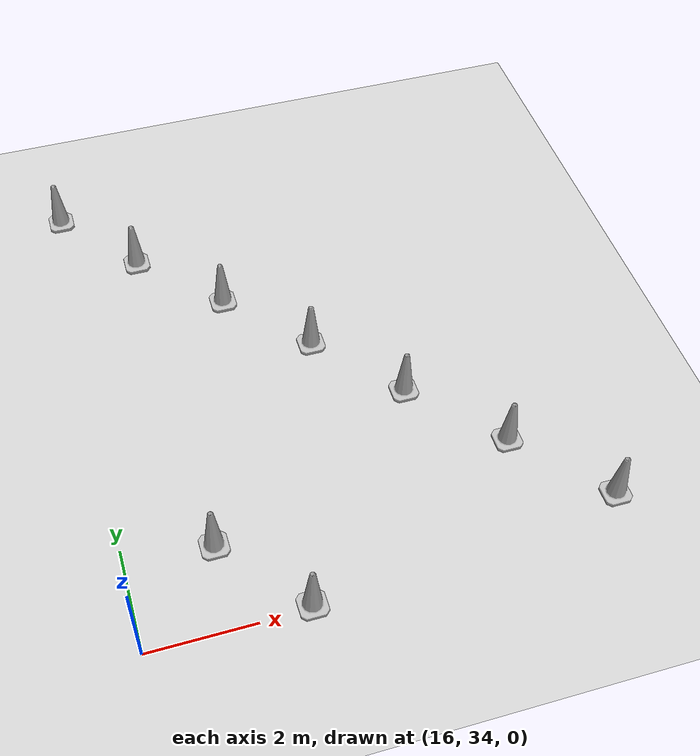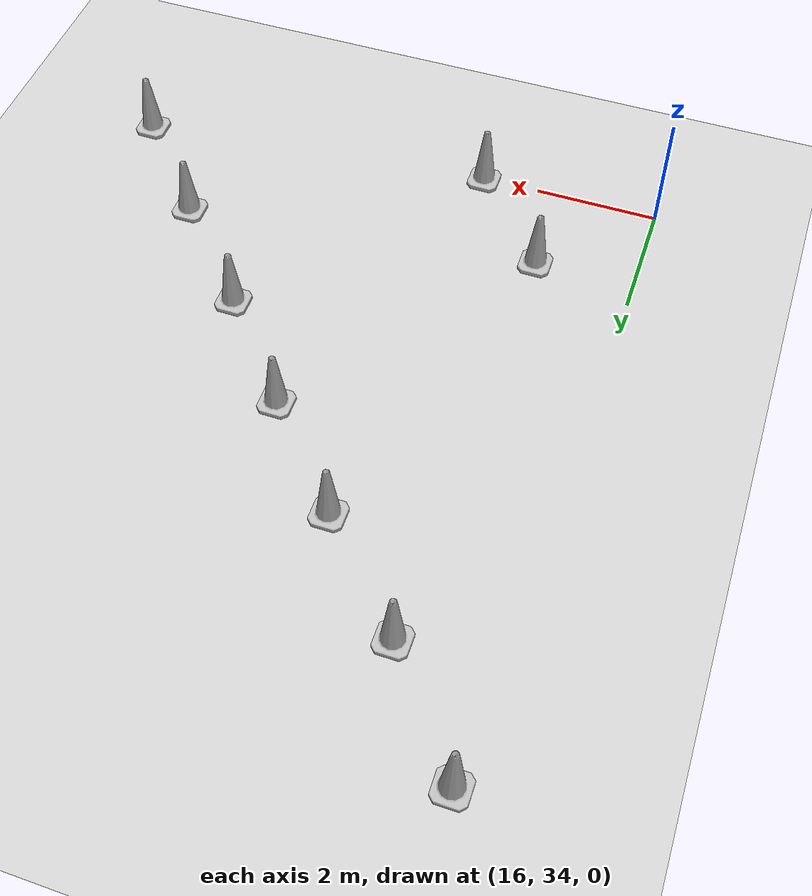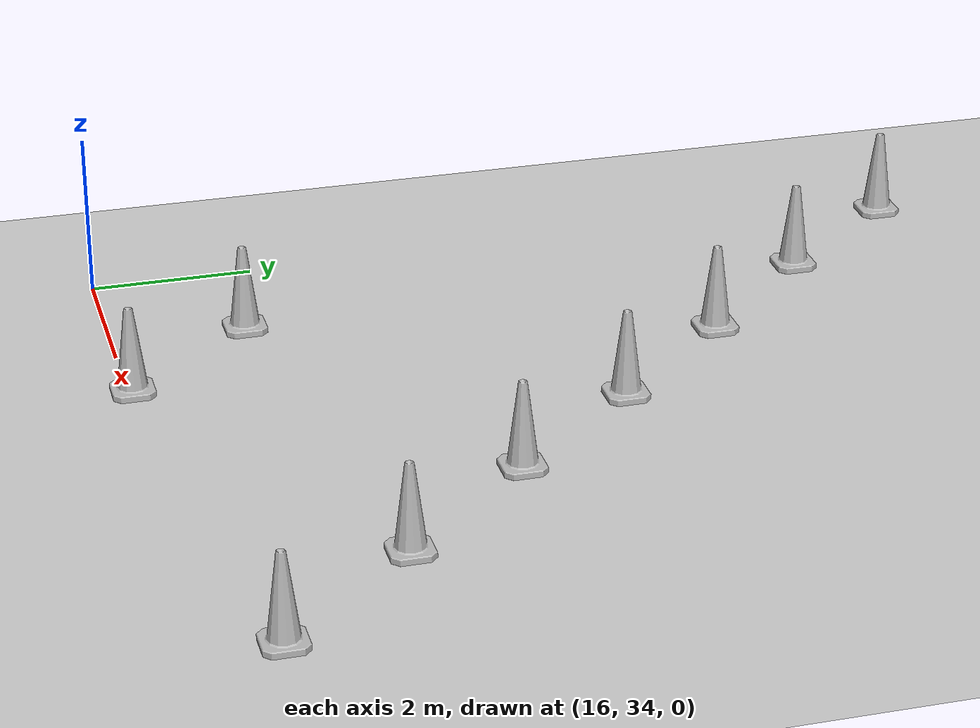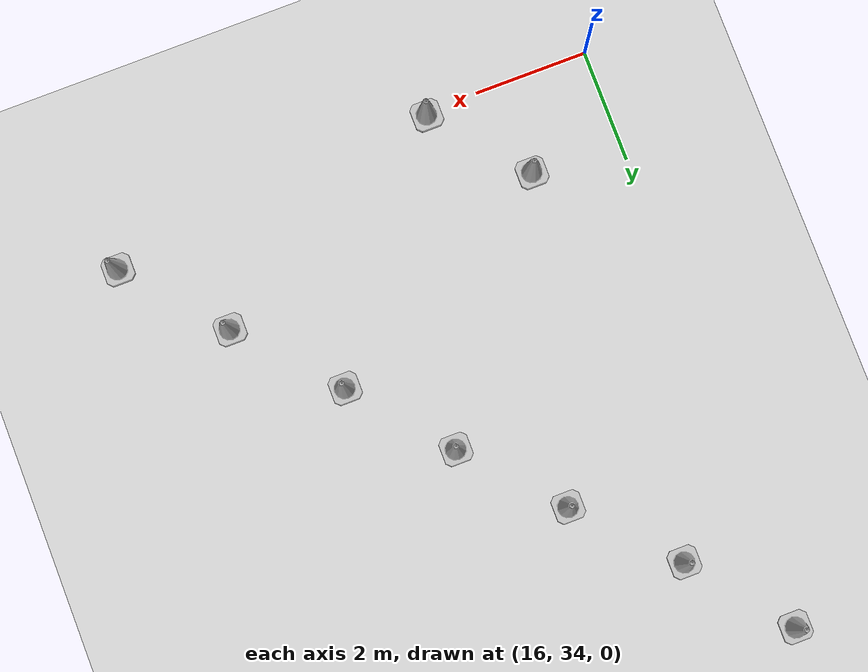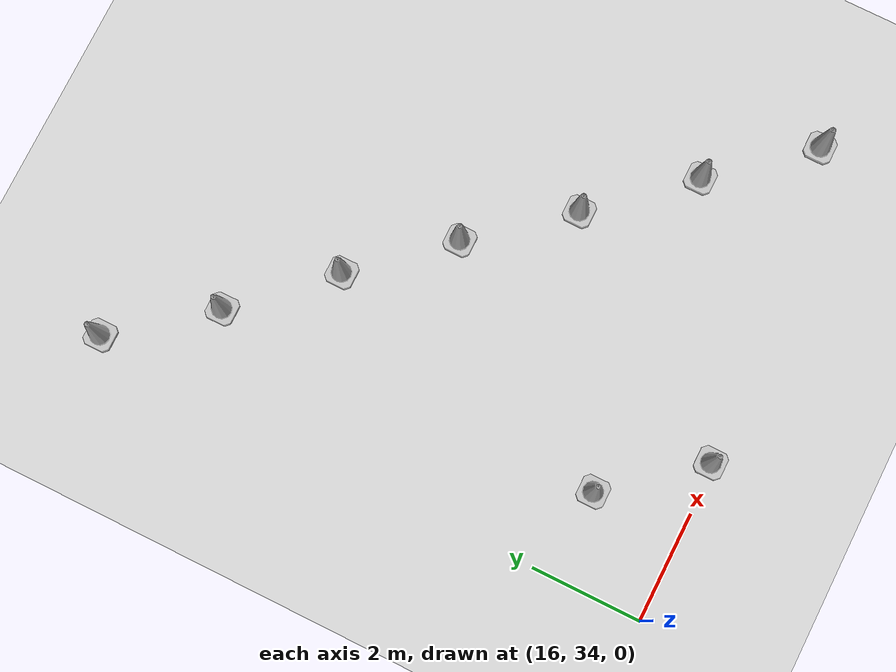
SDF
<sdf version="1.7">
 <world name="default">
  <model name="ground_plane">
   <static>1</static>
   <link name="link">
    <collision name="collision">
     <geometry><plane><normal>0 0 1</normal><size>125 125</size></plane></geometry>
     <surface>
      <contact><collide_bitmask>65535</collide_bitmask></contact>
      <friction><ode><mu>100</mu><mu2>50</mu2></ode></friction>
     </surface>
    </collision>
    <visual name="visual">
     <cast_shadows>0</cast_shadows>
     <geometry><plane><normal>0 0 1</normal><size>125 125</size></plane></geometry>
     <material>
      <script><uri>file://media/materials/scripts/gazebo.material</uri><name>Gazebo/Grey</name></script>
     </material>
    </visual>
   </link>
  </model>
  <model name="Construction Cone 17">
   <link name="link">
    <collision name="collision">
     <geometry>
      <mesh><scale>10 10 10</scale><uri>model://construction_cone/meshes/construction_cone.dae</uri></mesh>
     </geometry>
    </collision>
    <visual name="visual">
     <geometry>
      <mesh><scale>10 10 10</scale><uri>model://construction_cone/meshes/construction_cone.dae</uri></mesh>
     </geometry>
    </visual>
    <inertial>
     <inertia><ixx>1</ixx><ixy>0</ixy><ixz>0</ixz><iyy>1</iyy><iyz>0</iyz><izz>1</izz></inertia>
     <mass>1</mass>
    </inertial>
   </link>
   <pose>16.26824838119127 44.38585582765605 0 0 0 0</pose>
  </model>
  <model name="Construction Cone 21">
   <link name="link">
    <collision name="collision">
     <geometry>
      <mesh><scale>10 10 10</scale><uri>model://construction_cone/meshes/construction_cone.dae</uri></mesh>
     </geometry>
    </collision>
    <visual name="visual">
     <geometry>
      <mesh><scale>10 10 10</scale><uri>model://construction_cone/meshes/construction_cone.dae</uri></mesh>
     </geometry>
    </visual>
    <inertial>
     <inertia><ixx>1</ixx><ixy>0</ixy><ixz>0</ixz><iyy>1</iyy><iyz>0</iyz><izz>1</izz></inertia>
     <mass>1</mass>
    </inertial>
   </link>
   <pose>17.604748381191257 42.72535582765605 0 0 0 0</pose>
  </model>
  <model name="Construction Cone 24">
   <link name="link">
    <collision name="collision">
     <geometry>
      <mesh><scale>10 10 10</scale><uri>model://construction_cone/meshes/construction_cone.dae</uri></mesh>
     </geometry>
    </collision>
    <visual name="visual">
     <geometry>
      <mesh><scale>10 10 10</scale><uri>model://construction_cone/meshes/construction_cone.dae</uri></mesh>
     </geometry>
    </visual>
    <inertial>
     <inertia><ixx>1</ixx><ixy>0</ixy><ixz>0</ixz><iyy>1</iyy><iyz>0</iyz><izz>1</izz></inertia>
     <mass>1</mass>
    </inertial>
   </link>
   <pose>19.089748381191256 41.17285582765605 0 0 0 0</pose>
  </model>
  <model name="Construction Cone 28">
   <link name="link">
    <collision name="collision">
     <geometry>
      <mesh><scale>10 10 10</scale><uri>model://construction_cone/meshes/construction_cone.dae</uri></mesh>
     </geometry>
    </collision>
    <visual name="visual">
     <geometry>
      <mesh><scale>10 10 10</scale><uri>model://construction_cone/meshes/construction_cone.dae</uri></mesh>
     </geometry>
    </visual>
    <inertial>
     <inertia><ixx>1</ixx><ixy>0</ixy><ixz>0</ixz><iyy>1</iyy><iyz>0</iyz><izz>1</izz></inertia>
     <mass>1</mass>
    </inertial>
   </link>
   <pose>20.50724838119126 39.59785582765605 0 0 0 0</pose>
  </model>
  <model name="Construction Cone 32">
   <link name="link">
    <collision name="collision">
     <geometry>
      <mesh><scale>10 10 10</scale><uri>model://construction_cone/meshes/construction_cone.dae</uri></mesh>
     </geometry>
    </collision>
    <visual name="visual">
     <geometry>
      <mesh><scale>10 10 10</scale><uri>model://construction_cone/meshes/construction_cone.dae</uri></mesh>
     </geometry>
    </visual>
    <inertial>
     <inertia><ixx>1</ixx><ixy>0</ixy><ixz>0</ixz><iyy>1</iyy><iyz>0</iyz><izz>1</izz></inertia>
     <mass>1</mass>
    </inertial>
   </link>
   <pose>21.890998381191267 37.96660582765605 0 0 0 0</pose>
  </model>
  <model name="Construction Cone 36">
   <link name="link">
    <collision name="collision">
     <geometry>
      <mesh><scale>10 10 10</scale><uri>model://construction_cone/meshes/construction_cone.dae</uri></mesh>
     </geometry>
    </collision>
    <visual name="visual">
     <geometry>
      <mesh><scale>10 10 10</scale><uri>model://construction_cone/meshes/construction_cone.dae</uri></mesh>
     </geometry>
    </visual>
    <inertial>
     <inertia><ixx>1</ixx><ixy>0</ixy><ixz>0</ixz><iyy>1</iyy><iyz>0</iyz><izz>1</izz></inertia>
     <mass>1</mass>
    </inertial>
   </link>
   <pose>23.364748381191262 36.33535582765605 0 0 0 0</pose>
  </model>
  <model name="Construction Cone 37">
   <link name="link">
    <collision name="collision">
     <geometry>
      <mesh><scale>10 10 10</scale><uri>model://construction_cone/meshes/construction_cone.dae</uri></mesh>
     </geometry>
    </collision>
    <visual name="visual">
     <geometry>
      <mesh><scale>10 10 10</scale><uri>model://construction_cone/meshes/construction_cone.dae</uri></mesh>
     </geometry>
    </visual>
    <inertial>
     <inertia><ixx>1</ixx><ixy>0</ixy><ixz>0</ixz><iyy>1</iyy><iyz>0</iyz><izz>1</izz></inertia>
     <mass>1</mass>
    </inertial>
   </link>
   <pose>17.604748381191257 35.637855827656054 0 0 0 0</pose>
  </model>
  <model name="Construction Cone 40">
   <link name="link">
    <collision name="collision">
     <geometry>
      <mesh><scale>10 10 10</scale><uri>model://construction_cone/meshes/construction_cone.dae</uri></mesh>
     </geometry>
    </collision>
    <visual name="visual">
     <geometry>
      <mesh><scale>10 10 10</scale><uri>model://construction_cone/meshes/construction_cone.dae</uri></mesh>
     </geometry>
    </visual>
    <inertial>
     <inertia><ixx>1</ixx><ixy>0</ixy><ixz>0</ixz><iyy>1</iyy><iyz>0</iyz><izz>1</izz></inertia>
     <mass>1</mass>
    </inertial>
   </link>
   <pose>24.793498381191256 34.69285582765605 0 0 0 0</pose>
  </model>
  <model name="Construction Cone 41">
   <link name="link">
    <collision name="collision">
     <geometry>
      <mesh><scale>10 10 10</scale><uri>model://construction_cone/meshes/construction_cone.dae</uri></mesh>
     </geometry>
    </collision>
    <visual name="visual">
     <geometry>
      <mesh><scale>10 10 10</scale><uri>model://construction_cone/meshes/construction_cone.dae</uri></mesh>
     </geometry>
    </visual>
    <inertial>
     <inertia><ixx>1</ixx><ixy>0</ixy><ixz>0</ixz><iyy>1</iyy><iyz>0</iyz><izz>1</izz></inertia>
     <mass>1</mass>
    </inertial>
   </link>
   <pose>18.932248381191272 34.06285582765605 0 0 0 0</pose>
  </model>
 </world>
</sdf>
